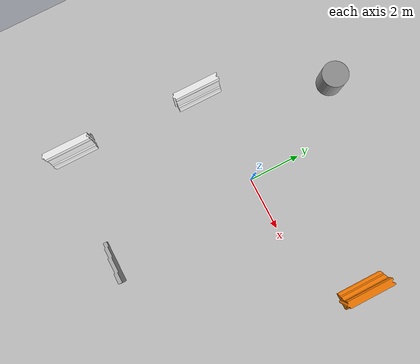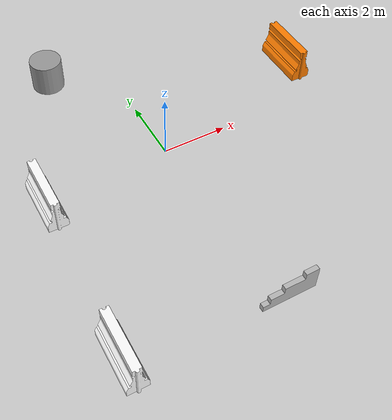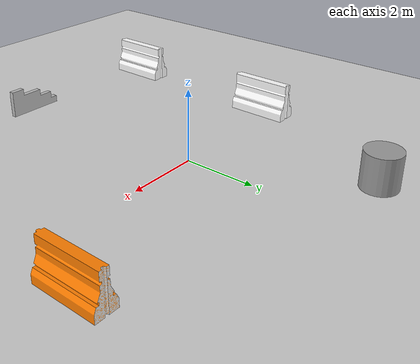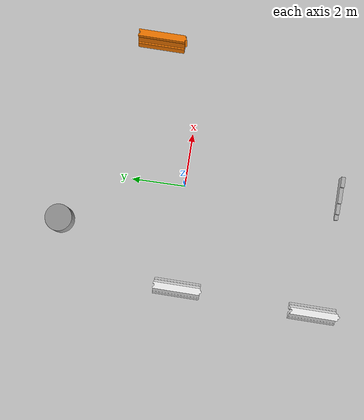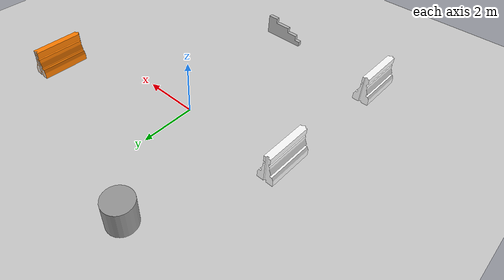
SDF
<sdf version="1.7">
 <world name="default">
  <light name="sun" type="directional">
   <pose>0 0 10 0 -0 0</pose>
   <diffuse>0.8 0.8 0.8 1</diffuse>
   <specular>0.2 0.2 0.2 1</specular>
   <attenuation>
    <range>1000</range>
    <constant>0.9</constant>
    <linear>0.01</linear>
    <quadratic>0.001</quadratic>
   </attenuation>
   <direction>-0.5 0.1 -0.9</direction>
   <spot><inner_angle>0</inner_angle><outer_angle>0</outer_angle><falloff>0</falloff></spot>
  </light>
  <model name="ground_plane">
   <static>1</static>
   <link name="link">
    <collision name="collision">
     <geometry><plane><normal>0 0 1</normal><size>100 100</size></plane></geometry>
     <surface><friction><ode><mu>100</mu><mu2>50</mu2></ode></friction></surface>
    </collision>
    <visual name="visual">
     <cast_shadows>0</cast_shadows>
     <geometry><plane><normal>0 0 1</normal><size>100 100</size></plane></geometry>
     <material>
      <script><uri>file://media/materials/scripts/gazebo.material</uri><name>Gazebo/Grey</name></script>
     </material>
    </visual>
   </link>
  </model>
  <gravity>0 0 -9.8</gravity>
  <magnetic_field>6e-06 2.3e-05 -4.2e-05</magnetic_field>
  <atmosphere type="adiabatic"/>
  <physics type="ode">
   <max_step_size>0.01</max_step_size>
   <real_time_factor>1</real_time_factor>
   <real_time_update_rate>0</real_time_update_rate>
  </physics>
  <scene><ambient>0.4 0.4 0.4 1</ambient><background>0.7 0.7 0.7 1</background><shadows>1</shadows></scene>
  <spherical_coordinates>
   <surface_model>EARTH_WGS84</surface_model>
   <latitude_deg>0</latitude_deg>
   <longitude_deg>0</longitude_deg>
   <elevation>0</elevation>
   <heading_deg>0</heading_deg>
  </spherical_coordinates>
  <model name="drc_practice_white_jersey_barrier">
   <static>1</static>
   <link name="link">
    <visual name="visual">
     <geometry>
      <mesh><uri>model://drc_practice_white_jersey_barrier/meshes/jersey_barrier.dae</uri></mesh>
     </geometry>
    </visual>
    <collision name="collision">
     <geometry>
      <mesh><uri>model://drc_practice_white_jersey_barrier/meshes/jersey_barrier.dae</uri></mesh>
     </geometry>
    </collision>
   </link>
   <pose>-3.84253 -0.286487 0 0 -0 0</pose>
  </model>
  <model name="unit_cylinder">
   <pose>-1.92908 4.40062 0.499994 -4e-06 -3e-06 -0</pose>
   <link name="link">
    <inertial>
     <mass>1</mass>
     <inertia><ixx>0.145833</ixx><ixy>0</ixy><ixz>0</ixz><iyy>0.145833</iyy><iyz>0</iyz><izz>0.125</izz></inertia>
    </inertial>
    <collision name="collision">
     <geometry><cylinder><radius>0.5</radius><length>1</length></cylinder></geometry>
    </collision>
    <visual name="visual">
     <geometry><cylinder><radius>0.5</radius><length>1</length></cylinder></geometry>
     <material>
      <script><name>Gazebo/Grey</name><uri>file://media/materials/scripts/gazebo.material</uri></script>
     </material>
    </visual>
   </link>
  </model>
  <model name="block_wall">
   <pose>0.52507 -5.81535 0.30924 0 -0 0</pose>
   <static>1</static>
   <link name="blocks">
    <collision name="collision">
     <geometry><mesh><uri>model://drc_practice_block_wall/meshes/block_wall.dae</uri></mesh></geometry>
     <surface>
      <bounce><restitution_coefficient>0</restitution_coefficient><threshold>100000</threshold></bounce>
      <friction><ode><mu>100</mu><mu2>50</mu2></ode></friction>
      <contact>
       <ode><soft_cfm>0</soft_cfm><soft_erp>0.2</soft_erp><max_vel>0</max_vel><min_depth>0</min_depth></ode>
      </contact>
     </surface>
    </collision>
    <visual name="visual">
     <geometry><mesh><uri>model://drc_practice_block_wall/meshes/block_wall.dae</uri></mesh></geometry>
    </visual>
   </link>
  </model>
  <model name="drc_practice_organge_jersey_barrier">
   <static>1</static>
   <link name="link">
    <visual name="visual">
     <geometry>
      <mesh><uri>model://drc_practice_orange_jersey_barrier/meshes/jersey_barrier.dae</uri></mesh>
     </geometry>
    </visual>
    <collision name="collision">
     <geometry>
      <mesh><uri>model://drc_practice_orange_jersey_barrier/meshes/jersey_barrier.dae</uri></mesh>
     </geometry>
    </collision>
   </link>
   <pose>5.40164 1.68659 0 0 -0 0</pose>
  </model>
  <model name="drc_practice_white_jersey_barrier_0">
   <static>1</static>
   <link name="link">
    <visual name="visual">
     <geometry>
      <mesh><uri>model://drc_practice_white_jersey_barrier/meshes/jersey_barrier.dae</uri></mesh>
     </geometry>
    </visual>
    <collision name="collision">
     <geometry>
      <mesh><uri>model://drc_practice_white_jersey_barrier/meshes/jersey_barrier.dae</uri></mesh>
     </geometry>
    </collision>
   </link>
   <pose>-4.00539 -5.38463 0 0 -0 0</pose>
  </model>
 </world>
</sdf>
